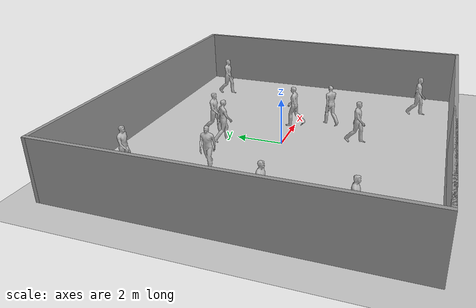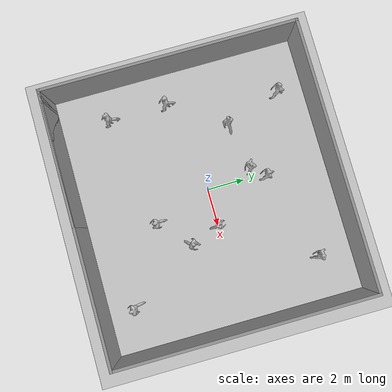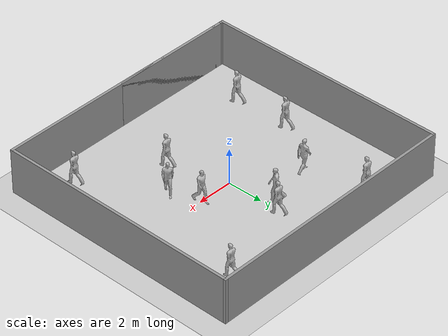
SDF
<sdf version="1.7">
 <world name="default">
  <light name="sun" type="directional">
   <pose>0 0 10 0 -0 0</pose>
   <diffuse>0.8 0.8 0.8 1</diffuse>
   <specular>0.2 0.2 0.2 1</specular>
   <attenuation>
    <range>1000</range>
    <constant>0.9</constant>
    <linear>0.01</linear>
    <quadratic>0.001</quadratic>
   </attenuation>
   <direction>-0.5 0.1 -0.9</direction>
   <spot><inner_angle>0</inner_angle><outer_angle>0</outer_angle><falloff>0</falloff></spot>
  </light>
  <model name="ground_plane">
   <static>1</static>
   <link name="link">
    <collision name="collision">
     <geometry><plane><normal>0 0 1</normal><size>100 100</size></plane></geometry>
     <surface><friction><ode><mu>100</mu><mu2>50</mu2></ode></friction></surface>
    </collision>
    <visual name="visual">
     <cast_shadows>0</cast_shadows>
     <geometry><plane><normal>0 0 1</normal><size>100 100</size></plane></geometry>
     <material>
      <script><uri>file://media/materials/scripts/gazebo.material</uri><name>Gazebo/Grey</name></script>
     </material>
    </visual>
   </link>
  </model>
  <gravity>0 0 -9.8</gravity>
  <magnetic_field>6e-06 2.3e-05 -4.2e-05</magnetic_field>
  <atmosphere type="adiabatic"/>
  <physics type="ode">
   <max_step_size>0.001</max_step_size>
   <real_time_factor>1</real_time_factor>
   <real_time_update_rate>1000</real_time_update_rate>
  </physics>
  <scene><ambient>0.4 0.4 0.4 1</ambient><background>0.7 0.7 0.7 1</background><shadows>1</shadows></scene>
  <spherical_coordinates>
   <surface_model>EARTH_WGS84</surface_model>
   <latitude_deg>0</latitude_deg>
   <longitude_deg>0</longitude_deg>
   <elevation>0</elevation>
   <heading_deg>0</heading_deg>
  </spherical_coordinates>
  <model name="new">
   <pose>0.229373 -0.14075 0 0 -0 0</pose>
   <link name="Wall_12">
    <collision name="Wall_12_Collision">
     <geometry><box><size>14 0.15 2.5</size></box></geometry>
     <pose>0 0 1.25 0 -0 0</pose>
    </collision>
    <visual name="Wall_12_Visual">
     <pose>0 0 1.25 0 -0 0</pose>
     <geometry><box><size>14 0.15 2.5</size></box></geometry>
     <material>
      <script><uri>file://media/materials/scripts/gazebo.material</uri><name>Gazebo/Grey</name></script>
      <ambient>1 1 1 1</ambient>
     </material>
     <meta><layer>0</layer></meta>
    </visual>
    <pose>0.125 -6.675 0 0 -0 0</pose>
   </link>
   <link name="Wall_13">
    <collision name="Wall_13_Collision">
     <geometry><box><size>13.5 0.15 2.5</size></box></geometry>
     <pose>0 0 1.25 0 -0 0</pose>
    </collision>
    <visual name="Wall_13_Visual">
     <pose>0 0 1.25 0 -0 0</pose>
     <geometry><box><size>13.5 0.15 2.5</size></box></geometry>
     <material>
      <script><uri>file://media/materials/scripts/gazebo.material</uri><name>Gazebo/Grey</name></script>
      <ambient>1 1 1 1</ambient>
     </material>
     <meta><layer>0</layer></meta>
    </visual>
    <pose>7.05 0 0 0 -0 1.5708</pose>
   </link>
   <link name="Wall_14">
    <collision name="Wall_14_Collision">
     <geometry><box><size>14.25 0.15 2.5</size></box></geometry>
     <pose>0 0 1.25 0 -0 0</pose>
    </collision>
    <visual name="Wall_14_Visual">
     <pose>0 0 1.25 0 -0 0</pose>
     <geometry><box><size>14.25 0.15 2.5</size></box></geometry>
     <material>
      <script><uri>file://media/materials/scripts/gazebo.material</uri><name>Gazebo/Grey</name></script>
      <ambient>1 1 1 1</ambient>
     </material>
     <meta><layer>0</layer></meta>
    </visual>
    <pose>0 6.675 0 0 -0 3.14159</pose>
   </link>
   <link name="Wall_15">
    <collision name="Wall_15_Collision">
     <geometry><box><size>13.5 0.15 2.5</size></box></geometry>
     <pose>0 0 1.25 0 -0 0</pose>
    </collision>
    <visual name="Wall_15_Visual">
     <pose>0 0 1.25 0 -0 0</pose>
     <geometry><box><size>13.5 0.15 2.5</size></box></geometry>
     <material>
      <script><uri>file://media/materials/scripts/gazebo.material</uri><name>Gazebo/Grey</name></script>
      <ambient>1 1 1 1</ambient>
     </material>
     <meta><layer>0</layer></meta>
    </visual>
    <pose>-7.05 0 0 0 -0 -1.5708</pose>
   </link>
   <link name="Wall_16">
    <collision name="Wall_16_Collision">
     <geometry><box><size>0.75 0.15 2.5</size></box></geometry>
     <pose>0 0 1.25 0 -0 0</pose>
    </collision>
    <visual name="Wall_16_Visual">
     <pose>0 0 1.25 0 -0 0</pose>
     <geometry><box><size>0.75 0.15 2.5</size></box></geometry>
     <material>
      <script><uri>file://media/materials/scripts/gazebo.material</uri><name>Gazebo/Grey</name></script>
      <ambient>1 1 1 1</ambient>
     </material>
     <meta><layer>0</layer></meta>
    </visual>
    <pose>-6.75 -6.675 0 0 -0 0</pose>
   </link>
   <link name="Wall_17">
    <collision name="Wall_17_Collision">
     <geometry><box><size>0.16 0.15 2.5</size></box></geometry>
     <pose>0 0 1.25 0 -0 0</pose>
    </collision>
    <visual name="Wall_17_Visual">
     <pose>0 0 1.25 0 -0 0</pose>
     <geometry><box><size>0.16 0.15 2.5</size></box></geometry>
     <material>
      <script><uri>file://media/materials/scripts/gazebo.material</uri><name>Gazebo/Grey</name></script>
      <ambient>1 1 1 1</ambient>
     </material>
     <meta><layer>0</layer></meta>
    </visual>
    <pose>-6.445 -6.675 0 0 -0 0</pose>
   </link>
   <link name="Wall_18">
    <collision name="Wall_18_Collision">
     <geometry><box><size>0.16 0.15 2.5</size></box></geometry>
     <pose>0 0 1.25 0 -0 0</pose>
    </collision>
    <visual name="Wall_18_Visual">
     <pose>0 0 1.25 0 -0 0</pose>
     <geometry><box><size>0.16 0.15 2.5</size></box></geometry>
     <material>
      <script><uri>file://media/materials/scripts/gazebo.material</uri><name>Gazebo/Grey</name></script>
      <ambient>1 1 1 1</ambient>
     </material>
     <meta><layer>0</layer></meta>
    </visual>
    <pose>-6.435 -6.675 0 0 -0 0</pose>
   </link>
   <link name="Wall_19">
    <collision name="Wall_19_Collision">
     <geometry><box><size>6.5 0.15 2.5</size></box></geometry>
     <pose>0 0 1.25 0 -0 0</pose>
    </collision>
    <visual name="Wall_19_Visual">
     <pose>0 0 1.25 0 -0 0</pose>
     <geometry><box><size>6.5 0.15 2.5</size></box></geometry>
     <material>
      <script><uri>file://media/materials/scripts/gazebo.material</uri><name>Gazebo/Grey</name></script>
      <ambient>1 1 1 1</ambient>
     </material>
     <meta><layer>0</layer></meta>
    </visual>
    <pose>-3.255 -6.675 0 0 -0 0</pose>
   </link>
   <static>1</static>
  </model>
  <model name="person_walking_0">
   <link name="link">
    <inertial>
     <pose>0 0 0.95 0 -0 0</pose>
     <mass>80</mass>
     <inertia><ixx>27.82</ixx><ixy>0</ixy><ixz>0</ixz><iyy>24.88</iyy><iyz>0</iyz><izz>4.57</izz></inertia>
    </inertial>
    <collision name="bottom">
     <pose>0 0 0.01 0 -0 0</pose>
     <geometry><box><size>0.35 0.75 0.02</size></box></geometry>
    </collision>
    <collision name="person">
     <pose>0 0 -0.02 0 -0 0</pose>
     <geometry><mesh><uri>model://person_walking/meshes/walking.dae</uri></mesh></geometry>
    </collision>
    <visual name="visual">
     <pose>0 0 -0.02 0 -0 0</pose>
     <geometry><mesh><uri>model://person_walking/meshes/walking.dae</uri></mesh></geometry>
    </visual>
   </link>
   <pose>1.93 -0 -1e-06 2e-06 -1e-06 -3.14156</pose>
  </model>
  <model name="person_walking_10">
   <link name="link">
    <inertial>
     <pose>0 0 0.95 0 -0 0</pose>
     <mass>80</mass>
     <inertia><ixx>27.82</ixx><ixy>0</ixy><ixz>0</ixz><iyy>24.88</iyy><iyz>0</iyz><izz>4.57</izz></inertia>
    </inertial>
    <collision name="bottom">
     <pose>0 0 0.01 0 -0 0</pose>
     <geometry><box><size>0.35 0.75 0.02</size></box></geometry>
    </collision>
    <collision name="person">
     <pose>0 0 -0.02 0 -0 0</pose>
     <geometry><mesh><uri>model://person_walking/meshes/walking.dae</uri></mesh></geometry>
    </collision>
    <visual name="visual">
     <pose>0 0 -0.02 0 -0 0</pose>
     <geometry><mesh><uri>model://person_walking/meshes/walking.dae</uri></mesh></geometry>
    </visual>
   </link>
   <pose>-3 1.93 -1e-06 2e-06 -1e-06 -1.57077</pose>
  </model>
  <model name="person_walking_1">
   <link name="link">
    <inertial>
     <pose>0 0 0.95 0 -0 0</pose>
     <mass>80</mass>
     <inertia><ixx>27.82</ixx><ixy>0</ixy><ixz>0</ixz><iyy>24.88</iyy><iyz>0</iyz><izz>4.57</izz></inertia>
    </inertial>
    <collision name="bottom">
     <pose>0 0 0.01 0 -0 0</pose>
     <geometry><box><size>0.35 0.75 0.02</size></box></geometry>
    </collision>
    <collision name="person">
     <pose>0 0 -0.02 0 -0 0</pose>
     <geometry><mesh><uri>model://person_walking/meshes/walking.dae</uri></mesh></geometry>
    </collision>
    <visual name="visual">
     <pose>0 0 -0.02 0 -0 0</pose>
     <geometry><mesh><uri>model://person_walking/meshes/walking.dae</uri></mesh></geometry>
    </visual>
   </link>
   <pose>2.53629 -1.53629 -1e-06 2e-06 -1e-06 2.35623</pose>
  </model>
  <model name="person_walking_2">
   <link name="link">
    <inertial>
     <pose>0 0 0.95 0 -0 0</pose>
     <mass>80</mass>
     <inertia><ixx>27.82</ixx><ixy>0</ixy><ixz>0</ixz><iyy>24.88</iyy><iyz>0</iyz><izz>4.57</izz></inertia>
    </inertial>
    <collision name="bottom">
     <pose>0 0 0.01 0 -0 0</pose>
     <geometry><box><size>0.35 0.75 0.02</size></box></geometry>
    </collision>
    <collision name="person">
     <pose>0 0 -0.02 0 -0 0</pose>
     <geometry><mesh><uri>model://person_walking/meshes/walking.dae</uri></mesh></geometry>
    </collision>
    <visual name="visual">
     <pose>0 0 -0.02 0 -0 0</pose>
     <geometry><mesh><uri>model://person_walking/meshes/walking.dae</uri></mesh></geometry>
    </visual>
   </link>
   <pose>1.07 -3 -1e-06 2e-06 -1e-06 2.8e-05</pose>
  </model>
  <model name="person_walking_3">
   <link name="link">
    <inertial>
     <pose>0 0 0.95 0 -0 0</pose>
     <mass>80</mass>
     <inertia><ixx>27.82</ixx><ixy>0</ixy><ixz>0</ixz><iyy>24.88</iyy><iyz>0</iyz><izz>4.57</izz></inertia>
    </inertial>
    <collision name="bottom">
     <pose>0 0 0.01 0 -0 0</pose>
     <geometry><box><size>0.35 0.75 0.02</size></box></geometry>
    </collision>
    <collision name="person">
     <pose>0 0 -0.02 0 -0 0</pose>
     <geometry><mesh><uri>model://person_walking/meshes/walking.dae</uri></mesh></geometry>
    </collision>
    <visual name="visual">
     <pose>0 0 -0.02 0 -0 0</pose>
     <geometry><mesh><uri>model://person_walking/meshes/walking.dae</uri></mesh></geometry>
    </visual>
   </link>
   <pose>-0.536289 2.46371 -1e-06 2e-06 -1e-06 0.785435</pose>
  </model>
  <model name="person_walking_4">
   <link name="link">
    <inertial>
     <pose>0 0 0.95 0 -0 0</pose>
     <mass>80</mass>
     <inertia><ixx>27.82</ixx><ixy>0</ixy><ixz>0</ixz><iyy>24.88</iyy><iyz>0</iyz><izz>4.57</izz></inertia>
    </inertial>
    <collision name="bottom">
     <pose>0 0 0.01 0 -0 0</pose>
     <geometry><box><size>0.35 0.75 0.02</size></box></geometry>
    </collision>
    <collision name="person">
     <pose>0 0 -0.02 0 -0 0</pose>
     <geometry><mesh><uri>model://person_walking/meshes/walking.dae</uri></mesh></geometry>
    </collision>
    <visual name="visual">
     <pose>0 0 -0.02 0 -0 0</pose>
     <geometry><mesh><uri>model://person_walking/meshes/walking.dae</uri></mesh></geometry>
    </visual>
   </link>
   <pose>4.86301 4.64174 -1e-06 -2e-06 1e-06 0.000288</pose>
  </model>
  <model name="person_walking_5">
   <link name="link">
    <inertial>
     <pose>0 0 0.95 0 -0 0</pose>
     <mass>80</mass>
     <inertia><ixx>27.82</ixx><ixy>0</ixy><ixz>0</ixz><iyy>24.88</iyy><iyz>0</iyz><izz>4.57</izz></inertia>
    </inertial>
    <collision name="bottom">
     <pose>0 0 0.01 0 -0 0</pose>
     <geometry><box><size>0.35 0.75 0.02</size></box></geometry>
    </collision>
    <collision name="person">
     <pose>0 0 -0.02 0 -0 0</pose>
     <geometry><mesh><uri>model://person_walking/meshes/walking.dae</uri></mesh></geometry>
    </collision>
    <visual name="visual">
     <pose>0 0 -0.02 0 -0 0</pose>
     <geometry><mesh><uri>model://person_walking/meshes/walking.dae</uri></mesh></geometry>
    </visual>
   </link>
   <pose>-4.87637 -4.00377 -1e-06 -2e-06 1e-06 0.000297</pose>
  </model>
  <model name="person_walking_6">
   <link name="link">
    <inertial>
     <pose>0 0 0.95 0 -0 0</pose>
     <mass>80</mass>
     <inertia><ixx>27.82</ixx><ixy>0</ixy><ixz>0</ixz><iyy>24.88</iyy><iyz>0</iyz><izz>4.57</izz></inertia>
    </inertial>
    <collision name="bottom">
     <pose>0 0 0.01 0 -0 0</pose>
     <geometry><box><size>0.35 0.75 0.02</size></box></geometry>
    </collision>
    <collision name="person">
     <pose>0 0 -0.02 0 -0 0</pose>
     <geometry><mesh><uri>model://person_walking/meshes/walking.dae</uri></mesh></geometry>
    </collision>
    <visual name="visual">
     <pose>0 0 -0.02 0 -0 0</pose>
     <geometry><mesh><uri>model://person_walking/meshes/walking.dae</uri></mesh></geometry>
    </visual>
   </link>
   <pose>-4.00719 4.99084 -1e-06 -2e-06 1e-06 0.000301</pose>
  </model>
  <model name="person_walking_7">
   <link name="link">
    <inertial>
     <pose>0 0 0.95 0 -0 0</pose>
     <mass>80</mass>
     <inertia><ixx>27.82</ixx><ixy>0</ixy><ixz>0</ixz><iyy>24.88</iyy><iyz>0</iyz><izz>4.57</izz></inertia>
    </inertial>
    <collision name="bottom">
     <pose>0 0 0.01 0 -0 0</pose>
     <geometry><box><size>0.35 0.75 0.02</size></box></geometry>
    </collision>
    <collision name="person">
     <pose>0 0 -0.02 0 -0 0</pose>
     <geometry><mesh><uri>model://person_walking/meshes/walking.dae</uri></mesh></geometry>
    </collision>
    <visual name="visual">
     <pose>0 0 -0.02 0 -0 0</pose>
     <geometry><mesh><uri>model://person_walking/meshes/walking.dae</uri></mesh></geometry>
    </visual>
   </link>
   <pose>0.140433 3.20677 -1e-06 -2e-06 1e-06 0.000299</pose>
  </model>
  <model name="person_walking_8">
   <link name="link">
    <inertial>
     <pose>0 0 0.95 0 -0 0</pose>
     <mass>80</mass>
     <inertia><ixx>27.82</ixx><ixy>0</ixy><ixz>0</ixz><iyy>24.88</iyy><iyz>0</iyz><izz>4.57</izz></inertia>
    </inertial>
    <collision name="bottom">
     <pose>0 0 0.01 0 -0 0</pose>
     <geometry><box><size>0.35 0.75 0.02</size></box></geometry>
    </collision>
    <collision name="person">
     <pose>0 0 -0.02 0 -0 0</pose>
     <geometry><mesh><uri>model://person_walking/meshes/walking.dae</uri></mesh></geometry>
    </collision>
    <visual name="visual">
     <pose>0 0 -0.02 0 -0 0</pose>
     <geometry><mesh><uri>model://person_walking/meshes/walking.dae</uri></mesh></geometry>
    </visual>
   </link>
   <pose>-4.91766 -0.886721 -1e-06 -2e-06 -1e-06 0.000169</pose>
  </model>
  <model name="person_walking_9">
   <link name="link">
    <inertial>
     <pose>0 0 0.95 0 -0 0</pose>
     <mass>80</mass>
     <inertia><ixx>27.82</ixx><ixy>0</ixy><ixz>0</ixz><iyy>24.88</iyy><iyz>0</iyz><izz>4.57</izz></inertia>
    </inertial>
    <collision name="bottom">
     <pose>0 0 0.01 0 -0 0</pose>
     <geometry><box><size>0.35 0.75 0.02</size></box></geometry>
    </collision>
    <collision name="person">
     <pose>0 0 -0.02 0 -0 0</pose>
     <geometry><mesh><uri>model://person_walking/meshes/walking.dae</uri></mesh></geometry>
    </collision>
    <visual name="visual">
     <pose>0 0 -0.02 0 -0 0</pose>
     <geometry><mesh><uri>model://person_walking/meshes/walking.dae</uri></mesh></geometry>
    </visual>
   </link>
   <pose>4.92959 -5.22703 -1e-06 -2e-06 1e-06 0.0003</pose>
  </model>
 </world>
</sdf>
